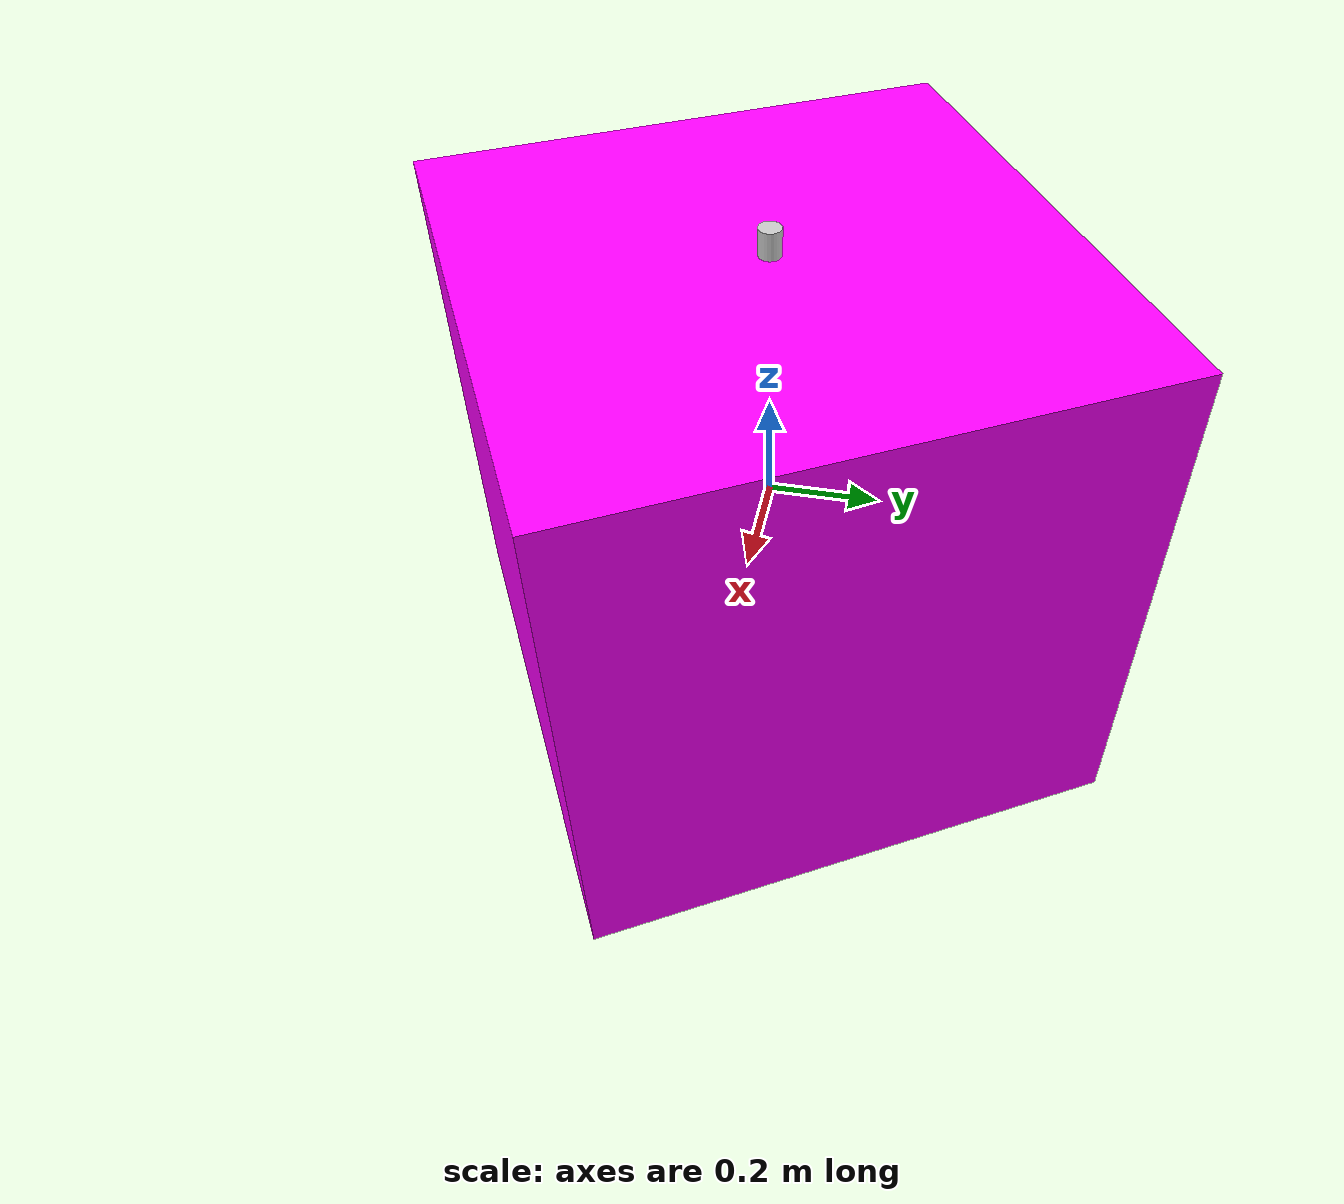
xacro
<?xml version="1.0"?>
<robot xmlns:xacro="http://www.ros.org/wiki/xacro" name="edge_cases">
  <!-- Test edge cases and potential error conditions -->

  <!-- Missing package reference -->
  <xacro:property name="missing_mesh" value="$(find nonexistent_package)/meshes/missing.stl"/>

  <!-- Invalid package:// URI -->
  <xacro:property name="invalid_package_uri" value="package://invalid_package/some/path.dae"/>

  <!-- Complex property calculations -->
  <xacro:property name="pi" value="3.14159"/>
  <xacro:property name="complex_value" value="${pi * 2 / 3}"/>

  <!-- Conditional content -->
  <xacro:property name="use_advanced_features" value="false"/>

  <link name="test_link">
    <visual>
      <origin xyz="0 0 0" rpy="0 0 ${complex_value}"/>
      <geometry>
        <xacro:if value="${use_advanced_features}">
          <mesh filename="${missing_mesh}"/>
        </xacro:if>
        <xacro:unless value="${use_advanced_features}">
          <box size="1 1 1"/>
        </xacro:unless>
      </geometry>
      <material name="test_material">
        <color rgba="1 0 1 1"/>
      </material>
    </visual>
    <collision>
      <origin xyz="0 0 0" rpy="0 0 0"/>
      <geometry>
        <mesh filename="${invalid_package_uri}"/>
      </geometry>
    </collision>
    <inertial>
      <mass value="1.0"/>
      <inertia ixx="0.1" ixy="0" ixz="0" iyy="0.1" iyz="0" izz="0.1"/>
    </inertial>
  </link>

  <!-- Test different joint types -->
  <link name="prismatic_link">
    <visual>
      <origin xyz="0 0 0" rpy="0 0 0"/>
      <geometry>
        <cylinder radius="0.02" length="0.1"/>
      </geometry>
      <material name="silver">
        <color rgba="0.8 0.8 0.8 1"/>
      </material>
    </visual>
    <inertial>
      <mass value="0.1"/>
      <inertia ixx="0.001" ixy="0" ixz="0" iyy="0.001" iyz="0" izz="0.001"/>
    </inertial>
  </link>

  <joint name="prismatic_joint" type="prismatic">
    <parent link="test_link"/>
    <child link="prismatic_link"/>
    <origin xyz="0 0 0.5" rpy="0 0 0"/>
    <axis xyz="0 0 1"/>
    <limit lower="0" upper="0.2" effort="100" velocity="1"/>
  </joint>
</robot>
